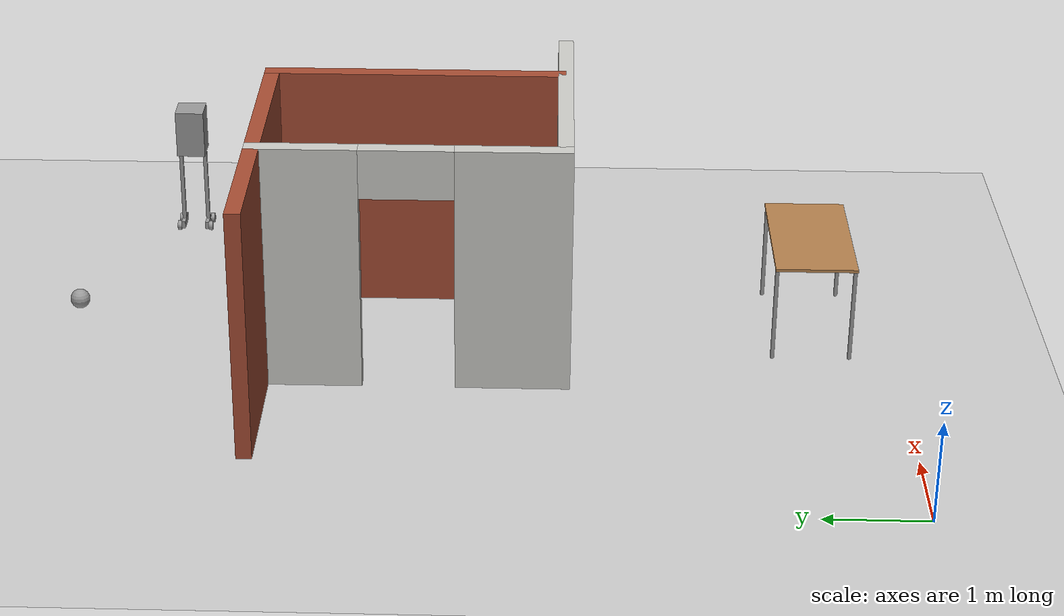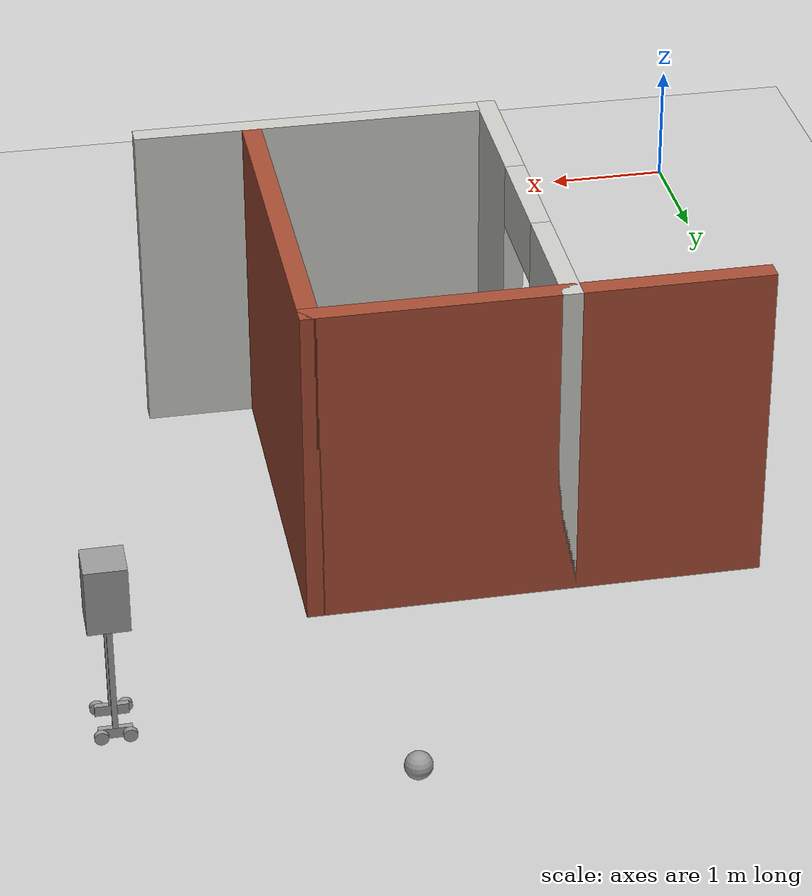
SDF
<sdf version="1.6">
 <world name="default">
  <model name="ground_plane">
   <static>1</static>
   <link name="link">
    <collision name="collision">
     <geometry><plane><normal>0 0 1</normal><size>100 100</size></plane></geometry>
     <surface>
      <contact><collide_bitmask>65535</collide_bitmask></contact>
      <friction><ode><mu>100</mu><mu2>50</mu2></ode></friction>
     </surface>
    </collision>
    <visual name="visual">
     <cast_shadows>0</cast_shadows>
     <geometry><plane><normal>0 0 1</normal><size>100 100</size></plane></geometry>
     <material>
      <script><uri>file://media/materials/scripts/gazebo.material</uri><name>Gazebo/Grey</name></script>
     </material>
    </visual>
   </link>
  </model>
  <model name="table">
   <static>1</static>
   <link name="link">
    <collision name="surface">
     <pose>0 0 1 0 -0 0</pose>
     <geometry><box><size>1.5 0.8 0.03</size></box></geometry>
     <surface><friction><ode><mu>0.6</mu><mu2>0.6</mu2></ode></friction></surface>
    </collision>
    <visual name="visual1">
     <pose>0 0 1 0 -0 0</pose>
     <geometry><box><size>1.5 0.8 0.03</size></box></geometry>
     <material>
      <script><uri>file://media/materials/scripts/gazebo.material</uri><name>Gazebo/Wood</name></script>
     </material>
    </visual>
    <collision name="front_left_leg">
     <pose>0.68 0.38 0.5 0 -0 0</pose>
     <geometry><cylinder><radius>0.02</radius><length>1</length></cylinder></geometry>
    </collision>
    <visual name="front_left_leg">
     <pose>0.68 0.38 0.5 0 -0 0</pose>
     <geometry><cylinder><radius>0.02</radius><length>1</length></cylinder></geometry>
     <material>
      <script><uri>file://media/materials/scripts/gazebo.material</uri><name>Gazebo/Grey</name></script>
     </material>
    </visual>
    <collision name="front_right_leg">
     <pose>0.68 -0.38 0.5 0 -0 0</pose>
     <geometry><cylinder><radius>0.02</radius><length>1</length></cylinder></geometry>
    </collision>
    <visual name="front_right_leg">
     <pose>0.68 -0.38 0.5 0 -0 0</pose>
     <geometry><cylinder><radius>0.02</radius><length>1</length></cylinder></geometry>
     <material>
      <script><uri>file://media/materials/scripts/gazebo.material</uri><name>Gazebo/Grey</name></script>
     </material>
    </visual>
    <collision name="back_right_leg">
     <pose>-0.68 -0.38 0.5 0 -0 0</pose>
     <geometry><cylinder><radius>0.02</radius><length>1</length></cylinder></geometry>
    </collision>
    <visual name="back_right_leg">
     <pose>-0.68 -0.38 0.5 0 -0 0</pose>
     <geometry><cylinder><radius>0.02</radius><length>1</length></cylinder></geometry>
     <material>
      <script><uri>file://media/materials/scripts/gazebo.material</uri><name>Gazebo/Grey</name></script>
     </material>
    </visual>
    <collision name="back_left_leg">
     <pose>-0.68 0.38 0.5 0 -0 0</pose>
     <geometry><cylinder><radius>0.02</radius><length>1</length></cylinder></geometry>
    </collision>
    <visual name="back_left_leg">
     <pose>-0.68 0.38 0.5 0 -0 0</pose>
     <geometry><cylinder><radius>0.02</radius><length>1</length></cylinder></geometry>
     <material>
      <script><uri>file://media/materials/scripts/gazebo.material</uri><name>Gazebo/Grey</name></script>
     </material>
    </visual>
   </link>
   <pose>3.63355 0.82495 0 0 -0 0</pose>
  </model>
  <model name="humanoidrobot">
   <link name="link_0">
    <pose>0 -0 0.875556 0 -0 0</pose>
    <inertial>
     <mass>1</mass>
     <inertia>
      <ixx>0.166667</ixx>
      <ixy>0</ixy>
      <ixz>0</ixz>
      <iyy>0.166667</iyy>
      <iyz>0</iyz>
      <izz>0.166667</izz>
     </inertia>
    </inertial>
    <visual name="visual">
     <geometry><box><size>0.3 0.3 0.5</size></box></geometry>
     <material>
      <lighting>1</lighting>
      <script><uri>file://media/materials/scripts/gazebo.material</uri><name>Gazebo/Grey</name></script>
      <shader type="pixel"><normal_map>__default__</normal_map></shader>
      <ambient>0.3 0.3 0.3 1</ambient>
      <diffuse>0.7 0.7 0.7 1</diffuse>
      <specular>0.01 0.01 0.01 1</specular>
      <emissive>0 0 0 1</emissive>
     </material>
    </visual>
    <collision name="collision">
     <geometry><box><size>0.3 0.3 0.5</size></box></geometry>
     <surface>
      <friction>
       <ode><mu>1</mu><mu2>1</mu2><fdir1>0 0 0</fdir1><slip1>0</slip1><slip2>0</slip2></ode>
       <torsional>
        <coefficient>1</coefficient>
        <patch_radius>0</patch_radius>
        <surface_radius>0</surface_radius>
        <use_patch_radius>1</use_patch_radius>
        <ode><slip>0</slip></ode>
       </torsional>
      </friction>
      <bounce><restitution_coefficient>0</restitution_coefficient><threshold>1e+06</threshold></bounce>
      <contact>
       <collide_without_contact>0</collide_without_contact>
       <collide_without_contact_bitmask>1</collide_without_contact_bitmask>
       <collide_bitmask>1</collide_bitmask>
       <ode>
        <soft_cfm>0</soft_cfm>
        <soft_erp>0.2</soft_erp>
        <kp>1e+13</kp>
        <kd>1</kd>
        <max_vel>0.01</max_vel>
        <min_depth>0</min_depth>
       </ode>
       <bullet>
        <split_impulse>1</split_impulse>
        <split_impulse_penetration_threshold>-0.01</split_impulse_penetration_threshold>
        <soft_cfm>0</soft_cfm>
        <soft_erp>0.2</soft_erp>
        <kp>1e+13</kp>
        <kd>1</kd>
       </bullet>
      </contact>
     </surface>
    </collision>
   </link>
   <link name="link_0_clone">
    <pose>0 0.13 0.225556 0 -0 0</pose>
    <inertial>
     <mass>1</mass>
     <inertia>
      <ixx>0.166667</ixx>
      <ixy>0</ixy>
      <ixz>0</ixz>
      <iyy>0.166667</iyy>
      <iyz>0</iyz>
      <izz>0.166667</izz>
     </inertia>
    </inertial>
    <visual name="visual">
     <geometry><box><size>0.04 0.04 0.8</size></box></geometry>
     <material>
      <lighting>1</lighting>
      <script><uri>file://media/materials/scripts/gazebo.material</uri><name>Gazebo/Grey</name></script>
      <shader type="pixel"><normal_map>__default__</normal_map></shader>
      <ambient>0.3 0.3 0.3 1</ambient>
      <diffuse>0.7 0.7 0.7 1</diffuse>
      <specular>0.01 0.01 0.01 1</specular>
      <emissive>0 0 0 1</emissive>
     </material>
    </visual>
    <collision name="collision">
     <geometry><box><size>0.04 0.04 0.8</size></box></geometry>
     <surface>
      <friction>
       <ode><mu>1</mu><mu2>1</mu2><fdir1>0 0 0</fdir1><slip1>0</slip1><slip2>0</slip2></ode>
       <torsional>
        <coefficient>1</coefficient>
        <patch_radius>0</patch_radius>
        <surface_radius>0</surface_radius>
        <use_patch_radius>1</use_patch_radius>
        <ode><slip>0</slip></ode>
       </torsional>
      </friction>
      <bounce><restitution_coefficient>0</restitution_coefficient><threshold>1e+06</threshold></bounce>
      <contact>
       <collide_without_contact>0</collide_without_contact>
       <collide_without_contact_bitmask>1</collide_without_contact_bitmask>
       <collide_bitmask>1</collide_bitmask>
       <ode>
        <soft_cfm>0</soft_cfm>
        <soft_erp>0.2</soft_erp>
        <kp>1e+13</kp>
        <kd>1</kd>
        <max_vel>0.01</max_vel>
        <min_depth>0</min_depth>
       </ode>
       <bullet>
        <split_impulse>1</split_impulse>
        <split_impulse_penetration_threshold>-0.01</split_impulse_penetration_threshold>
        <soft_cfm>0</soft_cfm>
        <soft_erp>0.2</soft_erp>
        <kp>1e+13</kp>
        <kd>1</kd>
       </bullet>
      </contact>
     </surface>
    </collision>
   </link>
   <link name="link_0_clone_clone">
    <pose>-0 -0.13 0.225556 0 -0 0</pose>
    <inertial>
     <mass>1</mass>
     <inertia>
      <ixx>0.166667</ixx>
      <ixy>0</ixy>
      <ixz>0</ixz>
      <iyy>0.166667</iyy>
      <iyz>0</iyz>
      <izz>0.166667</izz>
     </inertia>
    </inertial>
    <visual name="visual">
     <geometry><box><size>0.04 0.04 0.8</size></box></geometry>
     <material>
      <lighting>1</lighting>
      <script><uri>file://media/materials/scripts/gazebo.material</uri><name>Gazebo/Grey</name></script>
      <shader type="pixel"><normal_map>__default__</normal_map></shader>
      <ambient>0.3 0.3 0.3 1</ambient>
      <diffuse>0.7 0.7 0.7 1</diffuse>
      <specular>0.01 0.01 0.01 1</specular>
      <emissive>0 0 0 1</emissive>
     </material>
    </visual>
    <collision name="collision">
     <geometry><box><size>0.04 0.04 0.8</size></box></geometry>
     <surface>
      <friction>
       <ode><mu>1</mu><mu2>1</mu2><fdir1>0 0 0</fdir1><slip1>0</slip1><slip2>0</slip2></ode>
       <torsional>
        <coefficient>1</coefficient>
        <patch_radius>0</patch_radius>
        <surface_radius>0</surface_radius>
        <use_patch_radius>1</use_patch_radius>
        <ode><slip>0</slip></ode>
       </torsional>
      </friction>
      <bounce><restitution_coefficient>0</restitution_coefficient><threshold>1e+06</threshold></bounce>
      <contact>
       <collide_without_contact>0</collide_without_contact>
       <collide_without_contact_bitmask>1</collide_without_contact_bitmask>
       <collide_bitmask>1</collide_bitmask>
       <ode>
        <soft_cfm>0</soft_cfm>
        <soft_erp>0.2</soft_erp>
        <kp>1e+13</kp>
        <kd>1</kd>
        <max_vel>0.01</max_vel>
        <min_depth>0</min_depth>
       </ode>
       <bullet>
        <split_impulse>1</split_impulse>
        <split_impulse_penetration_threshold>-0.01</split_impulse_penetration_threshold>
        <soft_cfm>0</soft_cfm>
        <soft_erp>0.2</soft_erp>
        <kp>1e+13</kp>
        <kd>1</kd>
       </bullet>
      </contact>
     </surface>
    </collision>
   </link>
   <link name="link_1">
    <pose>0 0.13 -0.214444 0 -0 0</pose>
    <inertial>
     <mass>1</mass>
     <inertia>
      <ixx>0.166667</ixx>
      <ixy>0</ixy>
      <ixz>0</ixz>
      <iyy>0.166667</iyy>
      <iyz>0</iyz>
      <izz>0.166667</izz>
     </inertia>
    </inertial>
    <visual name="visual">
     <geometry><box><size>0.24 0.04 0.08</size></box></geometry>
     <material>
      <lighting>1</lighting>
      <script><uri>file://media/materials/scripts/gazebo.material</uri><name>Gazebo/Grey</name></script>
      <shader type="pixel"><normal_map>__default__</normal_map></shader>
      <ambient>0.3 0.3 0.3 1</ambient>
      <diffuse>0.7 0.7 0.7 1</diffuse>
      <specular>0.01 0.01 0.01 1</specular>
      <emissive>0 0 0 1</emissive>
     </material>
    </visual>
    <collision name="collision">
     <geometry><box><size>0.24 0.04 0.08</size></box></geometry>
     <surface>
      <friction>
       <ode><mu>1</mu><mu2>1</mu2><fdir1>0 0 0</fdir1><slip1>0</slip1><slip2>0</slip2></ode>
       <torsional>
        <coefficient>1</coefficient>
        <patch_radius>0</patch_radius>
        <surface_radius>0</surface_radius>
        <use_patch_radius>1</use_patch_radius>
        <ode><slip>0</slip></ode>
       </torsional>
      </friction>
      <bounce><restitution_coefficient>0</restitution_coefficient><threshold>1e+06</threshold></bounce>
      <contact>
       <collide_without_contact>0</collide_without_contact>
       <collide_without_contact_bitmask>1</collide_without_contact_bitmask>
       <collide_bitmask>1</collide_bitmask>
       <ode>
        <soft_cfm>0</soft_cfm>
        <soft_erp>0.2</soft_erp>
        <kp>1e+13</kp>
        <kd>1</kd>
        <max_vel>0.01</max_vel>
        <min_depth>0</min_depth>
       </ode>
       <bullet>
        <split_impulse>1</split_impulse>
        <split_impulse_penetration_threshold>-0.01</split_impulse_penetration_threshold>
        <soft_cfm>0</soft_cfm>
        <soft_erp>0.2</soft_erp>
        <kp>1e+13</kp>
        <kd>1</kd>
       </bullet>
      </contact>
     </surface>
    </collision>
   </link>
   <link name="link_1_clone">
    <pose>-0 -0.13 -0.214444 0 -0 0</pose>
    <inertial>
     <mass>1</mass>
     <inertia>
      <ixx>0.166667</ixx>
      <ixy>0</ixy>
      <ixz>0</ixz>
      <iyy>0.166667</iyy>
      <iyz>0</iyz>
      <izz>0.166667</izz>
     </inertia>
    </inertial>
    <visual name="visual">
     <geometry><box><size>0.24 0.04 0.08</size></box></geometry>
     <material>
      <lighting>1</lighting>
      <script><uri>file://media/materials/scripts/gazebo.material</uri><name>Gazebo/Grey</name></script>
      <shader type="pixel"><normal_map>__default__</normal_map></shader>
      <ambient>0.3 0.3 0.3 1</ambient>
      <diffuse>0.7 0.7 0.7 1</diffuse>
      <specular>0.01 0.01 0.01 1</specular>
      <emissive>0 0 0 1</emissive>
     </material>
    </visual>
    <collision name="collision">
     <geometry><box><size>0.24 0.04 0.08</size></box></geometry>
     <surface>
      <friction>
       <ode><mu>1</mu><mu2>1</mu2><fdir1>0 0 0</fdir1><slip1>0</slip1><slip2>0</slip2></ode>
       <torsional>
        <coefficient>1</coefficient>
        <patch_radius>0</patch_radius>
        <surface_radius>0</surface_radius>
        <use_patch_radius>1</use_patch_radius>
        <ode><slip>0</slip></ode>
       </torsional>
      </friction>
      <bounce><restitution_coefficient>0</restitution_coefficient><threshold>1e+06</threshold></bounce>
      <contact>
       <collide_without_contact>0</collide_without_contact>
       <collide_without_contact_bitmask>1</collide_without_contact_bitmask>
       <collide_bitmask>1</collide_bitmask>
       <ode>
        <soft_cfm>0</soft_cfm>
        <soft_erp>0.2</soft_erp>
        <kp>1e+13</kp>
        <kd>1</kd>
        <max_vel>0.01</max_vel>
        <min_depth>0</min_depth>
       </ode>
       <bullet>
        <split_impulse>1</split_impulse>
        <split_impulse_penetration_threshold>-0.01</split_impulse_penetration_threshold>
        <soft_cfm>0</soft_cfm>
        <soft_erp>0.2</soft_erp>
        <kp>1e+13</kp>
        <kd>1</kd>
       </bullet>
      </contact>
     </surface>
    </collision>
   </link>
   <link name="link_2">
    <pose>0.1 -0.17 -0.224444 1.5707 -0 0</pose>
    <inertial>
     <mass>1</mass>
     <inertia><ixx>0.145833</ixx><ixy>0</ixy><ixz>0</ixz><iyy>0.145833</iyy><iyz>0</iyz><izz>0.125</izz></inertia>
    </inertial>
    <visual name="visual">
     <geometry><cylinder><radius>0.05</radius><length>0.04</length></cylinder></geometry>
     <material>
      <lighting>1</lighting>
      <script><uri>file://media/materials/scripts/gazebo.material</uri><name>Gazebo/Grey</name></script>
      <shader type="pixel"><normal_map>__default__</normal_map></shader>
      <ambient>0.3 0.3 0.3 1</ambient>
      <diffuse>0.7 0.7 0.7 1</diffuse>
      <specular>0.01 0.01 0.01 1</specular>
      <emissive>0 0 0 1</emissive>
     </material>
    </visual>
    <collision name="collision">
     <geometry><cylinder><radius>0.05</radius><length>0.04</length></cylinder></geometry>
     <surface>
      <friction>
       <ode><mu>1</mu><mu2>1</mu2><fdir1>0 0 0</fdir1><slip1>0</slip1><slip2>0</slip2></ode>
       <torsional>
        <coefficient>1</coefficient>
        <patch_radius>0</patch_radius>
        <surface_radius>0</surface_radius>
        <use_patch_radius>1</use_patch_radius>
        <ode><slip>0</slip></ode>
       </torsional>
      </friction>
      <bounce><restitution_coefficient>0</restitution_coefficient><threshold>1e+06</threshold></bounce>
      <contact>
       <collide_without_contact>0</collide_without_contact>
       <collide_without_contact_bitmask>1</collide_without_contact_bitmask>
       <collide_bitmask>1</collide_bitmask>
       <ode>
        <soft_cfm>0</soft_cfm>
        <soft_erp>0.2</soft_erp>
        <kp>1e+13</kp>
        <kd>1</kd>
        <max_vel>0.01</max_vel>
        <min_depth>0</min_depth>
       </ode>
       <bullet>
        <split_impulse>1</split_impulse>
        <split_impulse_penetration_threshold>-0.01</split_impulse_penetration_threshold>
        <soft_cfm>0</soft_cfm>
        <soft_erp>0.2</soft_erp>
        <kp>1e+13</kp>
        <kd>1</kd>
       </bullet>
      </contact>
     </surface>
    </collision>
   </link>
   <link name="link_2_clone">
    <pose>-0.1 -0.17 -0.224444 1.5707 -0 0</pose>
    <inertial>
     <mass>1</mass>
     <inertia><ixx>0.145833</ixx><ixy>0</ixy><ixz>0</ixz><iyy>0.145833</iyy><iyz>0</iyz><izz>0.125</izz></inertia>
    </inertial>
    <visual name="visual">
     <geometry><cylinder><radius>0.05</radius><length>0.04</length></cylinder></geometry>
     <material>
      <lighting>1</lighting>
      <script><uri>file://media/materials/scripts/gazebo.material</uri><name>Gazebo/Grey</name></script>
      <shader type="pixel"><normal_map>__default__</normal_map></shader>
      <ambient>0.3 0.3 0.3 1</ambient>
      <diffuse>0.7 0.7 0.7 1</diffuse>
      <specular>0.01 0.01 0.01 1</specular>
      <emissive>0 0 0 1</emissive>
     </material>
    </visual>
    <collision name="collision">
     <geometry><cylinder><radius>0.05</radius><length>0.04</length></cylinder></geometry>
     <surface>
      <friction>
       <ode><mu>1</mu><mu2>1</mu2><fdir1>0 0 0</fdir1><slip1>0</slip1><slip2>0</slip2></ode>
       <torsional>
        <coefficient>1</coefficient>
        <patch_radius>0</patch_radius>
        <surface_radius>0</surface_radius>
        <use_patch_radius>1</use_patch_radius>
        <ode><slip>0</slip></ode>
       </torsional>
      </friction>
      <bounce><restitution_coefficient>0</restitution_coefficient><threshold>1e+06</threshold></bounce>
      <contact>
       <collide_without_contact>0</collide_without_contact>
       <collide_without_contact_bitmask>1</collide_without_contact_bitmask>
       <collide_bitmask>1</collide_bitmask>
       <ode>
        <soft_cfm>0</soft_cfm>
        <soft_erp>0.2</soft_erp>
        <kp>1e+13</kp>
        <kd>1</kd>
        <max_vel>0.01</max_vel>
        <min_depth>0</min_depth>
       </ode>
       <bullet>
        <split_impulse>1</split_impulse>
        <split_impulse_penetration_threshold>-0.01</split_impulse_penetration_threshold>
        <soft_cfm>0</soft_cfm>
        <soft_erp>0.2</soft_erp>
        <kp>1e+13</kp>
        <kd>1</kd>
       </bullet>
      </contact>
     </surface>
    </collision>
   </link>
   <link name="link_2_clone_0">
    <pose>0.1 0.17 -0.224444 1.5707 -0 0</pose>
    <inertial>
     <mass>1</mass>
     <inertia><ixx>0.145833</ixx><ixy>0</ixy><ixz>0</ixz><iyy>0.145833</iyy><iyz>0</iyz><izz>0.125</izz></inertia>
    </inertial>
    <visual name="visual">
     <geometry><cylinder><radius>0.05</radius><length>0.04</length></cylinder></geometry>
     <material>
      <lighting>1</lighting>
      <script><uri>file://media/materials/scripts/gazebo.material</uri><name>Gazebo/Grey</name></script>
      <shader type="pixel"><normal_map>__default__</normal_map></shader>
      <ambient>0.3 0.3 0.3 1</ambient>
      <diffuse>0.7 0.7 0.7 1</diffuse>
      <specular>0.01 0.01 0.01 1</specular>
      <emissive>0 0 0 1</emissive>
     </material>
    </visual>
    <collision name="collision">
     <geometry><cylinder><radius>0.05</radius><length>0.04</length></cylinder></geometry>
     <surface>
      <friction>
       <ode><mu>1</mu><mu2>1</mu2><fdir1>0 0 0</fdir1><slip1>0</slip1><slip2>0</slip2></ode>
       <torsional>
        <coefficient>1</coefficient>
        <patch_radius>0</patch_radius>
        <surface_radius>0</surface_radius>
        <use_patch_radius>1</use_patch_radius>
        <ode><slip>0</slip></ode>
       </torsional>
      </friction>
      <bounce><restitution_coefficient>0</restitution_coefficient><threshold>1e+06</threshold></bounce>
      <contact>
       <collide_without_contact>0</collide_without_contact>
       <collide_without_contact_bitmask>1</collide_without_contact_bitmask>
       <collide_bitmask>1</collide_bitmask>
       <ode>
        <soft_cfm>0</soft_cfm>
        <soft_erp>0.2</soft_erp>
        <kp>1e+13</kp>
        <kd>1</kd>
        <max_vel>0.01</max_vel>
        <min_depth>0</min_depth>
       </ode>
       <bullet>
        <split_impulse>1</split_impulse>
        <split_impulse_penetration_threshold>-0.01</split_impulse_penetration_threshold>
        <soft_cfm>0</soft_cfm>
        <soft_erp>0.2</soft_erp>
        <kp>1e+13</kp>
        <kd>1</kd>
       </bullet>
      </contact>
     </surface>
    </collision>
   </link>
   <link name="link_2_clone_1">
    <pose>-0.1 0.17 -0.224444 1.5707 -0 0</pose>
    <inertial>
     <mass>1</mass>
     <inertia><ixx>0.145833</ixx><ixy>0</ixy><ixz>0</ixz><iyy>0.145833</iyy><iyz>0</iyz><izz>0.125</izz></inertia>
    </inertial>
    <visual name="visual">
     <geometry><cylinder><radius>0.05</radius><length>0.04</length></cylinder></geometry>
     <material>
      <lighting>1</lighting>
      <script><uri>file://media/materials/scripts/gazebo.material</uri><name>Gazebo/Grey</name></script>
      <shader type="pixel"><normal_map>__default__</normal_map></shader>
      <ambient>0.3 0.3 0.3 1</ambient>
      <diffuse>0.7 0.7 0.7 1</diffuse>
      <specular>0.01 0.01 0.01 1</specular>
      <emissive>0 0 0 1</emissive>
     </material>
    </visual>
    <collision name="collision">
     <geometry><cylinder><radius>0.05</radius><length>0.04</length></cylinder></geometry>
     <surface>
      <friction>
       <ode><mu>1</mu><mu2>1</mu2><fdir1>0 0 0</fdir1><slip1>0</slip1><slip2>0</slip2></ode>
       <torsional>
        <coefficient>1</coefficient>
        <patch_radius>0</patch_radius>
        <surface_radius>0</surface_radius>
        <use_patch_radius>1</use_patch_radius>
        <ode><slip>0</slip></ode>
       </torsional>
      </friction>
      <bounce><restitution_coefficient>0</restitution_coefficient><threshold>1e+06</threshold></bounce>
      <contact>
       <collide_without_contact>0</collide_without_contact>
       <collide_without_contact_bitmask>1</collide_without_contact_bitmask>
       <collide_bitmask>1</collide_bitmask>
       <ode>
        <soft_cfm>0</soft_cfm>
        <soft_erp>0.2</soft_erp>
        <kp>1e+13</kp>
        <kd>1</kd>
        <max_vel>0.01</max_vel>
        <min_depth>0</min_depth>
       </ode>
       <bullet>
        <split_impulse>1</split_impulse>
        <split_impulse_penetration_threshold>-0.01</split_impulse_penetration_threshold>
        <soft_cfm>0</soft_cfm>
        <soft_erp>0.2</soft_erp>
        <kp>1e+13</kp>
        <kd>1</kd>
       </bullet>
      </contact>
     </surface>
    </collision>
   </link>
   <joint name="link_0_JOINT_0" type="fixed">
    <parent>link_0</parent>
    <child>link_0_clone</child>
    <physics>
     <ode><limit><cfm>0</cfm><erp>0.2</erp></limit><suspension><cfm>0</cfm><erp>0.2</erp></suspension></ode>
    </physics>
   </joint>
   <joint name="link_0_JOINT_1" type="fixed">
    <parent>link_0</parent>
    <child>link_0_clone_clone</child>
    <physics>
     <ode><limit><cfm>0</cfm><erp>0.2</erp></limit><suspension><cfm>0</cfm><erp>0.2</erp></suspension></ode>
    </physics>
   </joint>
   <joint name="link_0_clone_JOINT_2" type="fixed">
    <parent>link_0_clone</parent>
    <child>link_1</child>
    <pose>0 0 0 -0.01 0 0</pose>
    <physics>
     <ode><limit><cfm>0</cfm><erp>0.2</erp></limit><suspension><cfm>0</cfm><erp>0.2</erp></suspension></ode>
    </physics>
   </joint>
   <joint name="link_0_clone_clone_JOINT_3" type="fixed">
    <parent>link_0_clone_clone</parent>
    <child>link_1_clone</child>
    <physics>
     <ode><limit><cfm>0</cfm><erp>0.2</erp></limit><suspension><cfm>0</cfm><erp>0.2</erp></suspension></ode>
    </physics>
   </joint>
   <joint name="link_1_JOINT_6" type="revolute">
    <parent>link_1</parent>
    <child>link_2_clone_0</child>
    <axis>
     <xyz>1 0 0</xyz>
     <use_parent_model_frame>0</use_parent_model_frame>
     <limit>
      <lower>-1.79769e+308</lower>
      <upper>1.79769e+308</upper>
      <effort>-1</effort>
      <velocity>-1</velocity>
     </limit>
     <dynamics>
      <spring_reference>0</spring_reference>
      <spring_stiffness>0</spring_stiffness>
      <damping>0</damping>
      <friction>0</friction>
     </dynamics>
    </axis>
    <physics>
     <ode><limit><cfm>0</cfm><erp>0.2</erp></limit><suspension><cfm>0</cfm><erp>0.2</erp></suspension></ode>
    </physics>
   </joint>
   <joint name="link_1_JOINT_7" type="revolute">
    <parent>link_1</parent>
    <child>link_2_clone_1</child>
    <axis>
     <xyz>1 0 0</xyz>
     <use_parent_model_frame>0</use_parent_model_frame>
     <limit>
      <lower>-1.79769e+308</lower>
      <upper>1.79769e+308</upper>
      <effort>-1</effort>
      <velocity>-1</velocity>
     </limit>
     <dynamics>
      <spring_reference>0</spring_reference>
      <spring_stiffness>0</spring_stiffness>
      <damping>0</damping>
      <friction>0</friction>
     </dynamics>
    </axis>
    <physics>
     <ode><limit><cfm>0</cfm><erp>0.2</erp></limit><suspension><cfm>0</cfm><erp>0.2</erp></suspension></ode>
    </physics>
   </joint>
   <joint name="link_1_clone_JOINT_4" type="revolute">
    <parent>link_1_clone</parent>
    <child>link_2</child>
    <axis>
     <xyz>0 0 1</xyz>
     <use_parent_model_frame>0</use_parent_model_frame>
     <limit>
      <lower>-1.79769e+308</lower>
      <upper>1.79769e+308</upper>
      <effort>-1</effort>
      <velocity>-1</velocity>
     </limit>
     <dynamics>
      <spring_reference>0</spring_reference>
      <spring_stiffness>0</spring_stiffness>
      <damping>0</damping>
      <friction>0</friction>
     </dynamics>
    </axis>
    <physics>
     <ode><limit><cfm>0</cfm><erp>0.2</erp></limit><suspension><cfm>0</cfm><erp>0.2</erp></suspension></ode>
    </physics>
   </joint>
   <joint name="link_1_clone_JOINT_5" type="revolute">
    <parent>link_1_clone</parent>
    <child>link_2_clone</child>
    <axis>
     <xyz>0 0 1</xyz>
     <use_parent_model_frame>0</use_parent_model_frame>
     <limit>
      <lower>-1.79769e+308</lower>
      <upper>1.79769e+308</upper>
      <effort>-1</effort>
      <velocity>-1</velocity>
     </limit>
     <dynamics>
      <spring_reference>0</spring_reference>
      <spring_stiffness>0</spring_stiffness>
      <damping>0</damping>
      <friction>0</friction>
     </dynamics>
    </axis>
    <physics>
     <ode><limit><cfm>0</cfm><erp>0.2</erp></limit><suspension><cfm>0</cfm><erp>0.2</erp></suspension></ode>
    </physics>
   </joint>
   <static>0</static>
   <pose>5.75044 7.31193 0.274445 -1.5e-05 1.1e-05 0.006784</pose>
  </model>
  <model name="my_ball">
   <link name="link">
    <inertial>
     <mass>1</mass>
     <inertia><ixx>0.1</ixx><ixy>0</ixy><ixz>0</ixz><iyy>0.1</iyy><iyz>0</iyz><izz>0.1</izz></inertia>
    </inertial>
    <visual name="visual">
     <geometry><sphere><radius>0.1</radius></sphere></geometry>
     <material>
      <script><name>Gazebo/Grey</name><uri>file://media/materials/scripts/gazebo.material</uri></script>
      <ambient>1 1 1 1</ambient>
      <diffuse>1 1 1 1</diffuse>
      <specular>1 1 1 1</specular>
      <emissive>1 1 1 1</emissive>
      <shader type="vertex"><normal_map>__default__</normal_map></shader>
     </material>
    </visual>
    <collision name="collision">
     <geometry><sphere><radius>0.1</radius></sphere></geometry>
     <surface>
      <friction>
       <ode><mu>1</mu><mu2>1</mu2><fdir1>0 0 0</fdir1><slip1>0</slip1><slip2>0</slip2></ode>
       <torsional>
        <coefficient>1</coefficient>
        <patch_radius>0</patch_radius>
        <surface_radius>0</surface_radius>
        <use_patch_radius>1</use_patch_radius>
        <ode><slip>0</slip></ode>
       </torsional>
      </friction>
      <bounce><restitution_coefficient>0</restitution_coefficient><threshold>1e+06</threshold></bounce>
      <contact>
       <collide_without_contact>0</collide_without_contact>
       <collide_without_contact_bitmask>1</collide_without_contact_bitmask>
       <collide_bitmask>1</collide_bitmask>
       <ode>
        <soft_cfm>0</soft_cfm>
        <soft_erp>0.2</soft_erp>
        <kp>1e+13</kp>
        <kd>1</kd>
        <max_vel>0.01</max_vel>
        <min_depth>0</min_depth>
       </ode>
       <bullet>
        <split_impulse>1</split_impulse>
        <split_impulse_penetration_threshold>-0.01</split_impulse_penetration_threshold>
        <soft_cfm>0</soft_cfm>
        <soft_erp>0.2</soft_erp>
        <kp>1e+13</kp>
        <kd>1</kd>
       </bullet>
      </contact>
     </surface>
    </collision>
   </link>
   <static>0</static>
   <pose>3.78244 8.24532 0.1 0 -0 0</pose>
  </model>
  <model name="building">
   <link name="Wall_2">
    <pose>1.76194 3.85506 0 0 0 -1.5708</pose>
    <visual name="Wall_2_Visual_2">
     <pose>-0.025124 0 2.25 0 -0 0</pose>
     <geometry><box><size>0.9 0.15 0.5</size></box></geometry>
     <material>
      <script><uri>file://media/materials/scripts/gazebo.material</uri><name>Gazebo/CeilingTiled</name></script>
      <ambient>1 1 1 1</ambient>
      <shader type="pixel"/>
      <diffuse>1 1 1 1</diffuse>
      <specular>0 0 0 1</specular>
      <emissive>0 0 0 1</emissive>
     </material>
     <meta><layer>0</layer></meta>
    </visual>
    <visual name="Wall_2_Visual_1">
     <pose>0.981938 0 1.25 0 -0 0</pose>
     <geometry><box><size>1.11412 0.15 2.5</size></box></geometry>
     <material>
      <script><uri>file://media/materials/scripts/gazebo.material</uri><name>Gazebo/CeilingTiled</name></script>
      <ambient>1 1 1 1</ambient>
      <shader type="pixel"/>
      <diffuse>1 1 1 1</diffuse>
      <specular>0 0 0 1</specular>
      <emissive>0 0 0 1</emissive>
     </material>
     <meta><layer>0</layer></meta>
    </visual>
    <visual name="Wall_2_Visual_0">
     <pose>-1.00706 0 1.25 0 -0 0</pose>
     <geometry><box><size>1.06388 0.15 2.5</size></box></geometry>
     <material>
      <script><uri>file://media/materials/scripts/gazebo.material</uri><name>Gazebo/CeilingTiled</name></script>
      <ambient>1 1 1 1</ambient>
      <shader type="pixel"/>
      <diffuse>1 1 1 1</diffuse>
      <specular>0 0 0 1</specular>
      <emissive>0 0 0 1</emissive>
     </material>
     <meta><layer>0</layer></meta>
    </visual>
    <collision name="Wall_2_Collision_0">
     <pose>-1.00706 0 1.25 0 -0 0</pose>
     <geometry><box><size>1.06388 0.15 2.5</size></box></geometry>
     <surface>
      <friction>
       <ode><mu>1</mu><mu2>1</mu2><fdir1>0 0 0</fdir1><slip1>0</slip1><slip2>0</slip2></ode>
       <torsional>
        <coefficient>1</coefficient>
        <patch_radius>0</patch_radius>
        <surface_radius>0</surface_radius>
        <use_patch_radius>1</use_patch_radius>
        <ode><slip>0</slip></ode>
       </torsional>
      </friction>
      <bounce><restitution_coefficient>0</restitution_coefficient><threshold>1e+06</threshold></bounce>
      <contact>
       <collide_without_contact>0</collide_without_contact>
       <collide_without_contact_bitmask>1</collide_without_contact_bitmask>
       <collide_bitmask>1</collide_bitmask>
       <ode>
        <soft_cfm>0</soft_cfm>
        <soft_erp>0.2</soft_erp>
        <kp>1e+13</kp>
        <kd>1</kd>
        <max_vel>0.01</max_vel>
        <min_depth>0</min_depth>
       </ode>
       <bullet>
        <split_impulse>1</split_impulse>
        <split_impulse_penetration_threshold>-0.01</split_impulse_penetration_threshold>
        <soft_cfm>0</soft_cfm>
        <soft_erp>0.2</soft_erp>
        <kp>1e+13</kp>
        <kd>1</kd>
       </bullet>
      </contact>
     </surface>
    </collision>
    <collision name="Wall_2_Collision_1">
     <pose>0.981938 0 1.25 0 -0 0</pose>
     <geometry><box><size>1.11412 0.15 2.5</size></box></geometry>
     <surface>
      <friction>
       <ode><mu>1</mu><mu2>1</mu2><fdir1>0 0 0</fdir1><slip1>0</slip1><slip2>0</slip2></ode>
       <torsional>
        <coefficient>1</coefficient>
        <patch_radius>0</patch_radius>
        <surface_radius>0</surface_radius>
        <use_patch_radius>1</use_patch_radius>
        <ode><slip>0</slip></ode>
       </torsional>
      </friction>
      <bounce><restitution_coefficient>0</restitution_coefficient><threshold>1e+06</threshold></bounce>
      <contact>
       <collide_without_contact>0</collide_without_contact>
       <collide_without_contact_bitmask>1</collide_without_contact_bitmask>
       <collide_bitmask>1</collide_bitmask>
       <ode>
        <soft_cfm>0</soft_cfm>
        <soft_erp>0.2</soft_erp>
        <kp>1e+13</kp>
        <kd>1</kd>
        <max_vel>0.01</max_vel>
        <min_depth>0</min_depth>
       </ode>
       <bullet>
        <split_impulse>1</split_impulse>
        <split_impulse_penetration_threshold>-0.01</split_impulse_penetration_threshold>
        <soft_cfm>0</soft_cfm>
        <soft_erp>0.2</soft_erp>
        <kp>1e+13</kp>
        <kd>1</kd>
       </bullet>
      </contact>
     </surface>
    </collision>
    <collision name="Wall_2_Collision_2">
     <pose>-0.025124 0 2.25 0 -0 0</pose>
     <geometry><box><size>0.9 0.15 0.5</size></box></geometry>
     <surface>
      <friction>
       <ode><mu>1</mu><mu2>1</mu2><fdir1>0 0 0</fdir1><slip1>0</slip1><slip2>0</slip2></ode>
       <torsional>
        <coefficient>1</coefficient>
        <patch_radius>0</patch_radius>
        <surface_radius>0</surface_radius>
        <use_patch_radius>1</use_patch_radius>
        <ode><slip>0</slip></ode>
       </torsional>
      </friction>
      <bounce><restitution_coefficient>0</restitution_coefficient><threshold>1e+06</threshold></bounce>
      <contact>
       <collide_without_contact>0</collide_without_contact>
       <collide_without_contact_bitmask>1</collide_without_contact_bitmask>
       <collide_bitmask>1</collide_bitmask>
       <ode>
        <soft_cfm>0</soft_cfm>
        <soft_erp>0.2</soft_erp>
        <kp>1e+13</kp>
        <kd>1</kd>
        <max_vel>0.01</max_vel>
        <min_depth>0</min_depth>
       </ode>
       <bullet>
        <split_impulse>1</split_impulse>
        <split_impulse_penetration_threshold>-0.01</split_impulse_penetration_threshold>
        <soft_cfm>0</soft_cfm>
        <soft_erp>0.2</soft_erp>
        <kp>1e+13</kp>
        <kd>1</kd>
       </bullet>
      </contact>
     </surface>
    </collision>
   </link>
   <link name="Wall_36">
    <pose>2.68694 5.31906 0 0 -0 0</pose>
    <inertial>
     <mass>1</mass>
     <inertia><ixx>1</ixx><ixy>0</ixy><ixz>0</ixz><iyy>1</iyy><iyz>0</iyz><izz>1</izz></inertia>
    </inertial>
    <visual name="Wall_36_Visual">
     <pose>-0.7 0 1.25 0 -0 0</pose>
     <geometry><box><size>3.4 0.15 2.5</size></box></geometry>
     <material>
      <script><uri>file://media/materials/scripts/gazebo.material</uri><name>Gazebo/Bricks</name></script>
      <ambient>1 1 1 1</ambient>
      <shader type="pixel"><normal_map>__default__</normal_map></shader>
      <diffuse>1 1 1 1</diffuse>
      <specular>0.2 0.2 0.2 1</specular>
      <emissive>0 0 0 1</emissive>
     </material>
     <meta><layer>0</layer></meta>
    </visual>
    <collision name="Wall_36_Collision">
     <pose>-0.7 0 1.25 0 -0 0</pose>
     <geometry><box><size>3.4 0.15 2.5</size></box></geometry>
     <surface>
      <friction>
       <ode><mu>1</mu><mu2>1</mu2><fdir1>0 0 0</fdir1><slip1>0</slip1><slip2>0</slip2></ode>
       <torsional>
        <coefficient>1</coefficient>
        <patch_radius>0</patch_radius>
        <surface_radius>0</surface_radius>
        <use_patch_radius>1</use_patch_radius>
        <ode><slip>0</slip></ode>
       </torsional>
      </friction>
      <bounce><restitution_coefficient>0</restitution_coefficient><threshold>1e+06</threshold></bounce>
      <contact>
       <collide_without_contact>0</collide_without_contact>
       <collide_without_contact_bitmask>1</collide_without_contact_bitmask>
       <collide_bitmask>1</collide_bitmask>
       <ode>
        <soft_cfm>0</soft_cfm>
        <soft_erp>0.2</soft_erp>
        <kp>1e+13</kp>
        <kd>1</kd>
        <max_vel>0.01</max_vel>
        <min_depth>0</min_depth>
       </ode>
       <bullet>
        <split_impulse>1</split_impulse>
        <split_impulse_penetration_threshold>-0.01</split_impulse_penetration_threshold>
        <soft_cfm>0</soft_cfm>
        <soft_erp>0.2</soft_erp>
        <kp>1e+13</kp>
        <kd>1</kd>
       </bullet>
      </contact>
     </surface>
    </collision>
   </link>
   <link name="Wall_38">
    <pose>3.61194 3.89406 0 0 0 -1.5708</pose>
    <visual name="Wall_38_Visual">
     <pose>0 0 1.25 0 -0 0</pose>
     <geometry><box><size>3 0.15 2.5</size></box></geometry>
     <material>
      <script><uri>file://media/materials/scripts/gazebo.material</uri><name>Gazebo/Bricks</name></script>
      <ambient>1 1 1 1</ambient>
      <shader type="pixel"/>
      <diffuse>1 1 1 1</diffuse>
      <specular>0.2 0.2 0.2 1</specular>
      <emissive>0 0 0 1</emissive>
     </material>
     <meta><layer>0</layer></meta>
    </visual>
    <collision name="Wall_38_Collision">
     <pose>0 0 1.25 0 -0 0</pose>
     <geometry><box><size>3 0.15 2.5</size></box></geometry>
     <surface>
      <friction>
       <ode><mu>1</mu><mu2>1</mu2><fdir1>0 0 0</fdir1><slip1>0</slip1><slip2>0</slip2></ode>
       <torsional>
        <coefficient>1</coefficient>
        <patch_radius>0</patch_radius>
        <surface_radius>0</surface_radius>
        <use_patch_radius>1</use_patch_radius>
        <ode><slip>0</slip></ode>
       </torsional>
      </friction>
      <bounce><restitution_coefficient>0</restitution_coefficient><threshold>1e+06</threshold></bounce>
      <contact>
       <collide_without_contact>0</collide_without_contact>
       <collide_without_contact_bitmask>1</collide_without_contact_bitmask>
       <collide_bitmask>1</collide_bitmask>
       <ode>
        <soft_cfm>0</soft_cfm>
        <soft_erp>0.2</soft_erp>
        <kp>1e+13</kp>
        <kd>1</kd>
        <max_vel>0.01</max_vel>
        <min_depth>0</min_depth>
       </ode>
       <bullet>
        <split_impulse>1</split_impulse>
        <split_impulse_penetration_threshold>-0.01</split_impulse_penetration_threshold>
        <soft_cfm>0</soft_cfm>
        <soft_erp>0.2</soft_erp>
        <kp>1e+13</kp>
        <kd>1</kd>
       </bullet>
      </contact>
     </surface>
    </collision>
   </link>
   <link name="Wall_4">
    <pose>3.17218 2.39408 0 0 -0 3.14159</pose>
    <visual name="Wall_4_Visual">
     <pose>0 0 1.25 0 -0 0</pose>
     <geometry><box><size>2.682 0.15 2.5</size></box></geometry>
     <material>
      <script><uri>file://media/materials/scripts/gazebo.material</uri><name>Gazebo/CeilingTiled</name></script>
      <ambient>0.921569 0.807843 0.615686 1</ambient>
      <shader type="pixel"/>
      <diffuse>1 1 1 1</diffuse>
      <specular>0 0 0 1</specular>
      <emissive>0 0 0 1</emissive>
     </material>
     <meta><layer>0</layer></meta>
    </visual>
    <collision name="Wall_4_Collision">
     <pose>0 0 1.25 0 -0 0</pose>
     <geometry><box><size>2.682 0.15 2.5</size></box></geometry>
     <surface>
      <friction>
       <ode><mu>1</mu><mu2>1</mu2><fdir1>0 0 0</fdir1><slip1>0</slip1><slip2>0</slip2></ode>
       <torsional>
        <coefficient>1</coefficient>
        <patch_radius>0</patch_radius>
        <surface_radius>0</surface_radius>
        <use_patch_radius>1</use_patch_radius>
        <ode><slip>0</slip></ode>
       </torsional>
      </friction>
      <bounce><restitution_coefficient>0</restitution_coefficient><threshold>1e+06</threshold></bounce>
      <contact>
       <collide_without_contact>0</collide_without_contact>
       <collide_without_contact_bitmask>1</collide_without_contact_bitmask>
       <collide_bitmask>1</collide_bitmask>
       <ode>
        <soft_cfm>0</soft_cfm>
        <soft_erp>0.2</soft_erp>
        <kp>1e+13</kp>
        <kd>1</kd>
        <max_vel>0.01</max_vel>
        <min_depth>0</min_depth>
       </ode>
       <bullet>
        <split_impulse>1</split_impulse>
        <split_impulse_penetration_threshold>-0.01</split_impulse_penetration_threshold>
        <soft_cfm>0</soft_cfm>
        <soft_erp>0.2</soft_erp>
        <kp>1e+13</kp>
        <kd>1</kd>
       </bullet>
      </contact>
     </surface>
    </collision>
   </link>
   <static>1</static>
   <pose>0.55726 0.89542 0 0 -0 0</pose>
  </model>
 </world>
</sdf>
